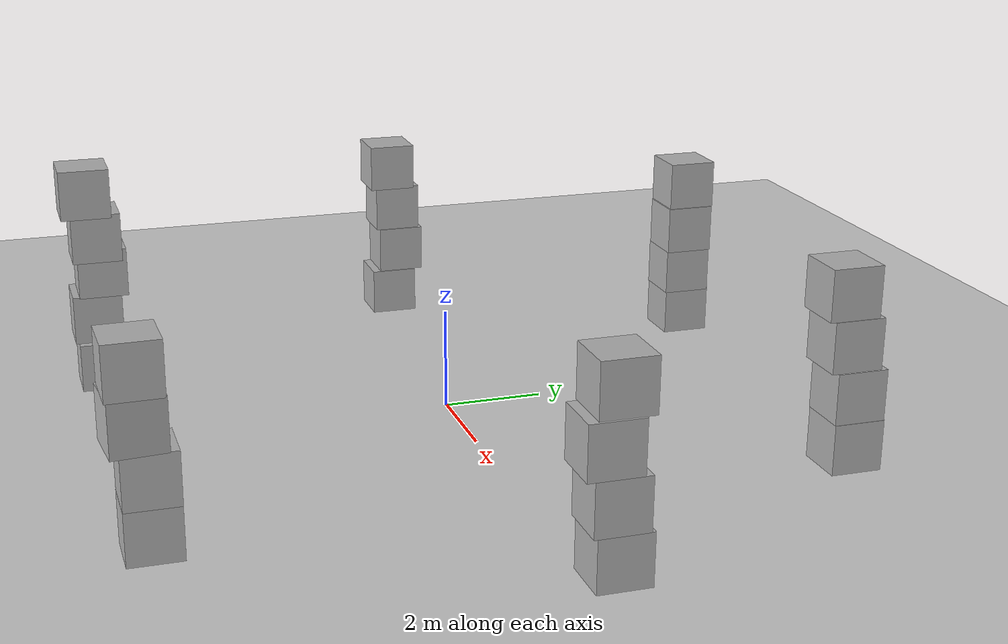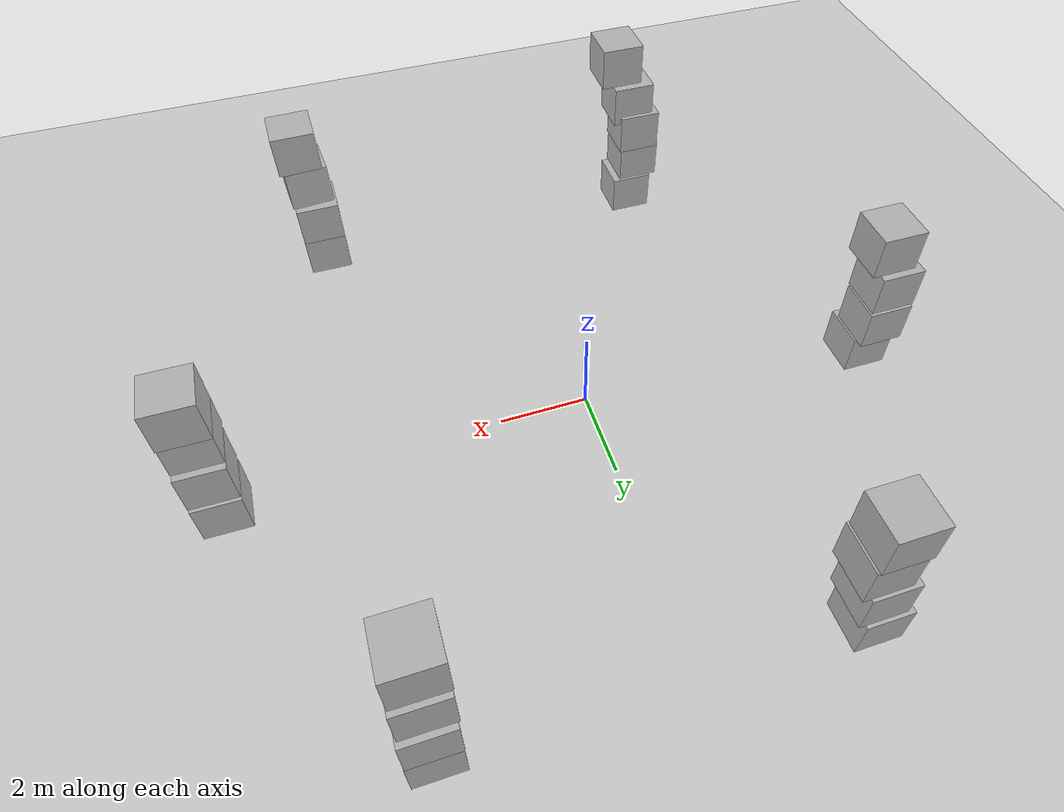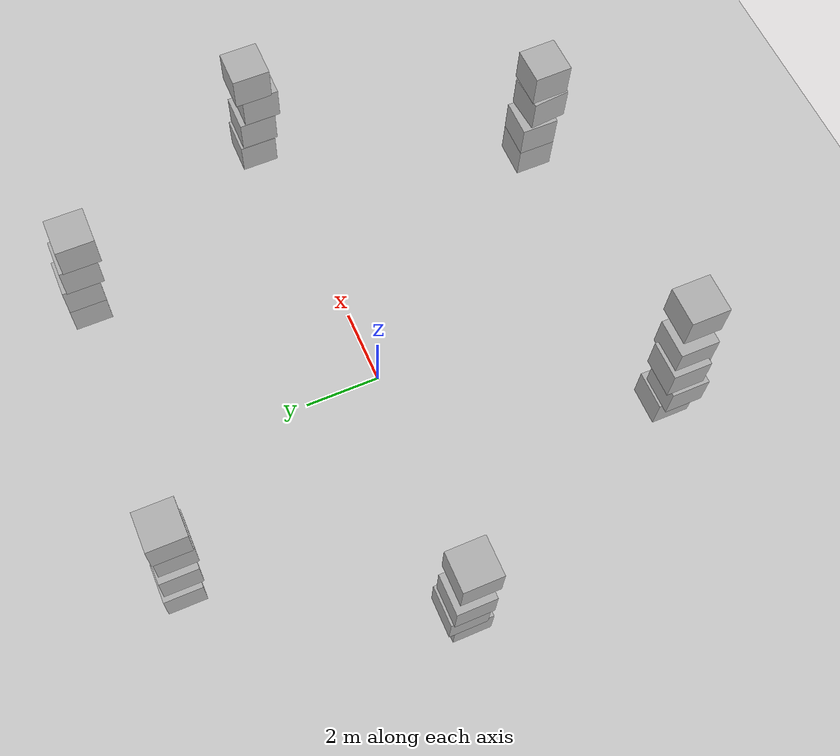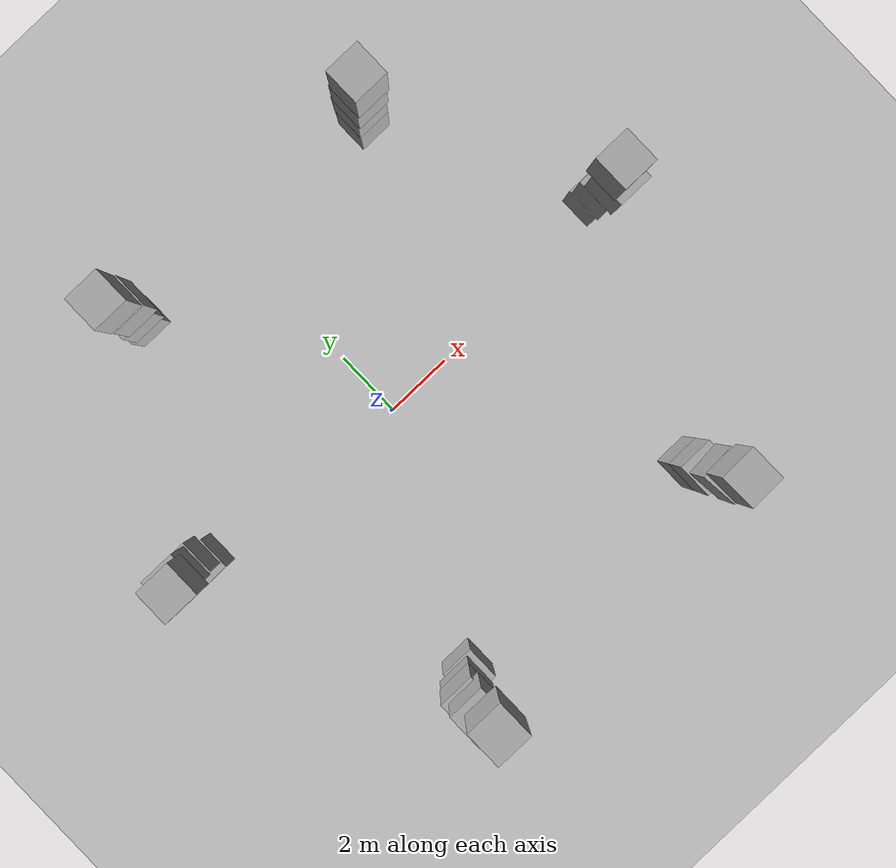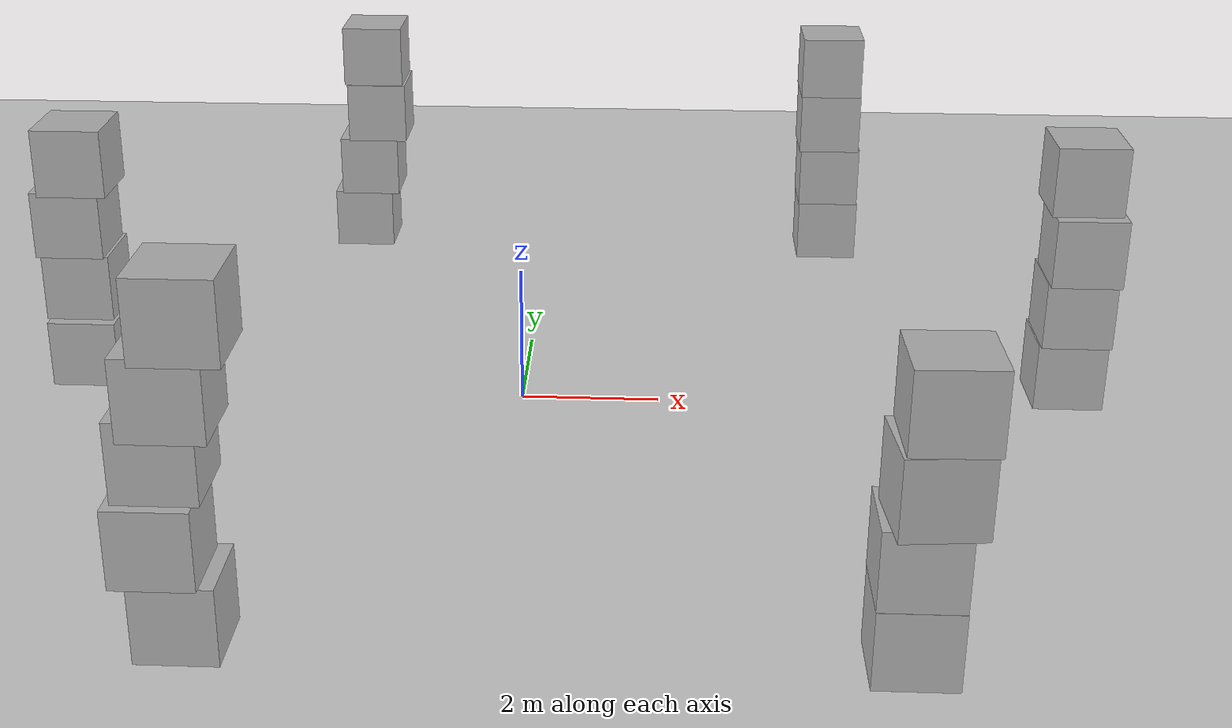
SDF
<sdf version='1.10'>
  <world name='test_world'>
    <physics name='1ms' type='ode'>
      <max_step_size>0.001</max_step_size>
      <real_time_factor>1</real_time_factor>
      <real_time_update_rate>1000</real_time_update_rate>
    </physics>
    <plugin name='gz::sim::systems::Physics' filename='gz-sim-physics-system'/>
    <plugin name='gz::sim::systems::UserCommands' filename='gz-sim-user-commands-system'/>
    <plugin name='gz::sim::systems::SceneBroadcaster' filename='gz-sim-scene-broadcaster-system'/>
    <plugin name='gz::sim::systems::Contact' filename='gz-sim-contact-system'/>
    <gravity>0 0 -9.8000000000000007</gravity>
    <magnetic_field>5.5644999999999998e-06 2.2875799999999999e-05 -4.2388400000000002e-05</magnetic_field>
    <atmosphere type='adiabatic'/>
    <scene>
      <ambient>0.400000006 0.400000006 0.400000006 1</ambient>
      <background>0.699999988 0.699999988 0.699999988 1</background>
      <shadows>true</shadows>
    </scene>
    <model name='ground_plane'>
      <static>true</static>
      <link name='link'>
        <collision name='collision'>
          <geometry>
            <plane>
              <normal>0 0 1</normal>
              <size>100 100</size>
            </plane>
          </geometry>
          <surface>
            <friction>
              <ode/>
            </friction>
            <bounce/>
            <contact/>
          </surface>
        </collision>
        <visual name='visual'>
          <geometry>
            <plane>
              <normal>0 0 1</normal>
              <size>100 100</size>
            </plane>
          </geometry>
          <material>
            <ambient>0.800000012 0.800000012 0.800000012 1</ambient>
            <diffuse>0.800000012 0.800000012 0.800000012 1</diffuse>
            <specular>0.800000012 0.800000012 0.800000012 1</specular>
          </material>
        </visual>
        <pose>0 0 0 0 0 0</pose>
        <inertial>
          <pose>0 0 0 0 0 0</pose>
          <mass>1</mass>
          <inertia>
            <ixx>1</ixx>
            <ixy>0</ixy>
            <ixz>0</ixz>
            <iyy>1</iyy>
            <iyz>0</iyz>
            <izz>1</izz>
          </inertia>
        </inertial>
        <enable_wind>false</enable_wind>
      </link>
      <pose>0 0 0 0 0 0</pose>
      <self_collide>false</self_collide>
    </model>

    <model name='box'>
      <pose>-3.29413 6.5723200000000004 0.5 6.2287699999999997e-22 9.3279700000000006e-22 -3.63155e-22</pose>
      <link name='box_link'>
        <inertial>
          <inertia>
            <ixx>0.16666</ixx>
            <ixy>0</ixy>
            <ixz>0</ixz>
            <iyy>0.16666</iyy>
            <iyz>0</iyz>
            <izz>0.16666</izz>
          </inertia>
          <mass>1</mass>
          <pose>0 0 0 0 0 0</pose>
        </inertial>
        <collision name='box_collision'>
          <geometry>
            <box>
              <size>1 1 1</size>
            </box>
          </geometry>
          <surface>
            <friction>
              <ode/>
            </friction>
            <bounce/>
            <contact/>
          </surface>
        </collision>
        <visual name='box_visual'>
          <geometry>
            <box>
              <size>1 1 1</size>
            </box>
          </geometry>
          <material>
            <ambient>0.300000012 0.300000012 0.300000012 1</ambient>
            <diffuse>0.699999988 0.699999988 0.699999988 1</diffuse>
            <specular>1 1 1 1</specular>
          </material>
        </visual>
        <pose>0 0 0 0 0 0</pose>
        <enable_wind>false</enable_wind>
      </link>
      <static>false</static>
      <self_collide>false</self_collide>
    </model>
    <model name='box_0'>
      <pose>4.9329900000000002 6.3403200000000002 0.5 6.2287699999999997e-22 9.3279700000000006e-22 -3.63155e-22</pose>
      <link name='box_link'>
        <inertial>
          <inertia>
            <ixx>0.16666</ixx>
            <ixy>0</ixy>
            <ixz>0</ixz>
            <iyy>0.16666</iyy>
            <iyz>0</iyz>
            <izz>0.16666</izz>
          </inertia>
          <mass>1</mass>
          <pose>0 0 0 0 0 0</pose>
        </inertial>
        <collision name='box_collision'>
          <geometry>
            <box>
              <size>1 1 1</size>
            </box>
          </geometry>
          <surface>
            <friction>
              <ode/>
            </friction>
            <bounce/>
            <contact/>
          </surface>
        </collision>
        <visual name='box_visual'>
          <geometry>
            <box>
              <size>1 1 1</size>
            </box>
          </geometry>
          <material>
            <ambient>0.300000012 0.300000012 0.300000012 1</ambient>
            <diffuse>0.699999988 0.699999988 0.699999988 1</diffuse>
            <specular>1 1 1 1</specular>
          </material>
        </visual>
        <pose>0 0 0 0 0 0</pose>
        <enable_wind>false</enable_wind>
      </link>
      <static>false</static>
      <self_collide>false</self_collide>
    </model>
    <model name='box_1'>
      <pose>7.97173 0.46510899999999999 0.5 0 0 0</pose>
      <link name='box_link'>
        <inertial>
          <inertia>
            <ixx>0.16666</ixx>
            <ixy>0</ixy>
            <ixz>0</ixz>
            <iyy>0.16666</iyy>
            <iyz>0</iyz>
            <izz>0.16666</izz>
          </inertia>
          <mass>1</mass>
          <pose>0 0 0 0 0 0</pose>
        </inertial>
        <collision name='box_collision'>
          <geometry>
            <box>
              <size>1 1 1</size>
            </box>
          </geometry>
          <surface>
            <friction>
              <ode/>
            </friction>
            <bounce/>
            <contact/>
          </surface>
        </collision>
        <visual name='box_visual'>
          <geometry>
            <box>
              <size>1 1 1</size>
            </box>
          </geometry>
          <material>
            <ambient>0.300000012 0.300000012 0.300000012 1</ambient>
            <diffuse>0.699999988 0.699999988 0.699999988 1</diffuse>
            <specular>1 1 1 1</specular>
          </material>
        </visual>
        <pose>0 0 0 0 0 0</pose>
        <enable_wind>false</enable_wind>
      </link>
      <static>false</static>
      <self_collide>false</self_collide>
    </model>
    <model name='box_2'>
      <pose>-6.56745 0.53924499999999997 0.5 0 0 0</pose>
      <link name='box_link'>
        <inertial>
          <inertia>
            <ixx>0.16666</ixx>
            <ixy>0</ixy>
            <ixz>0</ixz>
            <iyy>0.16666</iyy>
            <iyz>0</iyz>
            <izz>0.16666</izz>
          </inertia>
          <mass>1</mass>
          <pose>0 0 0 0 0 0</pose>
        </inertial>
        <collision name='box_collision'>
          <geometry>
            <box>
              <size>1 1 1</size>
            </box>
          </geometry>
          <surface>
            <friction>
              <ode/>
            </friction>
            <bounce/>
            <contact/>
          </surface>
        </collision>
        <visual name='box_visual'>
          <geometry>
            <box>
              <size>1 1 1</size>
            </box>
          </geometry>
          <material>
            <ambient>0.300000012 0.300000012 0.300000012 1</ambient>
            <diffuse>0.699999988 0.699999988 0.699999988 1</diffuse>
            <specular>1 1 1 1</specular>
          </material>
        </visual>
        <pose>0 0 0 0 0 0</pose>
        <enable_wind>false</enable_wind>
      </link>
      <static>false</static>
      <self_collide>false</self_collide>
    </model>
    <model name='box_3'>
      <pose>-3.3765000000000001 -6.5466100000000003 0.5 0 0 0</pose>
      <link name='box_link'>
        <inertial>
          <inertia>
            <ixx>0.16666</ixx>
            <ixy>0</ixy>
            <ixz>0</ixz>
            <iyy>0.16666</iyy>
            <iyz>0</iyz>
            <izz>0.16666</izz>
          </inertia>
          <mass>1</mass>
          <pose>0 0 0 0 0 0</pose>
        </inertial>
        <collision name='box_collision'>
          <geometry>
            <box>
              <size>1 1 1</size>
            </box>
          </geometry>
          <surface>
            <friction>
              <ode/>
            </friction>
            <bounce/>
            <contact/>
          </surface>
        </collision>
        <visual name='box_visual'>
          <geometry>
            <box>
              <size>1 1 1</size>
            </box>
          </geometry>
          <material>
            <ambient>0.300000012 0.300000012 0.300000012 1</ambient>
            <diffuse>0.699999988 0.699999988 0.699999988 1</diffuse>
            <specular>1 1 1 1</specular>
          </material>
        </visual>
        <pose>0 0 0 0 0 0</pose>
        <enable_wind>false</enable_wind>
      </link>
      <static>false</static>
      <self_collide>false</self_collide>
    </model>
    <model name='box_4'>
      <pose>4.8706500000000004 -6.6208999999999998 0.50000199999999995 -4.0443500000000011e-07 -1.0241600000000004e-05 -0.00023433800000000001</pose>
      <link name='box_link'>
        <inertial>
          <inertia>
            <ixx>0.16666</ixx>
            <ixy>0</ixy>
            <ixz>0</ixz>
            <iyy>0.16666</iyy>
            <iyz>0</iyz>
            <izz>0.16666</izz>
          </inertia>
          <mass>1</mass>
          <pose>0 0 0 0 0 0</pose>
        </inertial>
        <collision name='box_collision'>
          <geometry>
            <box>
              <size>1 1 1</size>
            </box>
          </geometry>
          <surface>
            <friction>
              <ode/>
            </friction>
            <bounce/>
            <contact/>
          </surface>
        </collision>
        <visual name='box_visual'>
          <geometry>
            <box>
              <size>1 1 1</size>
            </box>
          </geometry>
          <material>
            <ambient>0.300000012 0.300000012 0.300000012 1</ambient>
            <diffuse>0.699999988 0.699999988 0.699999988 1</diffuse>
            <specular>1 1 1 1</specular>
          </material>
        </visual>
        <pose>0 0 0 0 0 0</pose>
        <enable_wind>false</enable_wind>
      </link>
      <static>false</static>
      <self_collide>false</self_collide>
    </model>
    <model name='box_5'>
      <pose>4.9195700000000002 6.3357000000000001 1.4999899999999999 5.1937699999999989e-08 -1.9126299999999998e-08 -1.7903800000000001e-15</pose>
      <link name='box_link'>
        <inertial>
          <inertia>
            <ixx>0.16666</ixx>
            <ixy>0</ixy>
            <ixz>0</ixz>
            <iyy>0.16666</iyy>
            <iyz>0</iyz>
            <izz>0.16666</izz>
          </inertia>
          <mass>1</mass>
          <pose>0 0 0 0 0 0</pose>
        </inertial>
        <collision name='box_collision'>
          <geometry>
            <box>
              <size>1 1 1</size>
            </box>
          </geometry>
          <surface>
            <friction>
              <ode/>
            </friction>
            <bounce/>
            <contact/>
          </surface>
        </collision>
        <visual name='box_visual'>
          <geometry>
            <box>
              <size>1 1 1</size>
            </box>
          </geometry>
          <material>
            <ambient>0.300000012 0.300000012 0.300000012 1</ambient>
            <diffuse>0.699999988 0.699999988 0.699999988 1</diffuse>
            <specular>1 1 1 1</specular>
          </material>
        </visual>
        <pose>0 0 0 0 0 0</pose>
        <enable_wind>false</enable_wind>
      </link>
      <static>false</static>
      <self_collide>false</self_collide>
    </model>
    <model name='box_6'>
      <pose>4.8823499999999997 6.2183900000000003 2.4999899999999999 1.1252100000000003e-07 -3.0415800000000002e-08 1.4821600000000004e-15</pose>
      <link name='box_link'>
        <inertial>
          <inertia>
            <ixx>0.16666</ixx>
            <ixy>0</ixy>
            <ixz>0</ixz>
            <iyy>0.16666</iyy>
            <iyz>0</iyz>
            <izz>0.16666</izz>
          </inertia>
          <mass>1</mass>
          <pose>0 0 0 0 0 0</pose>
        </inertial>
        <collision name='box_collision'>
          <geometry>
            <box>
              <size>1 1 1</size>
            </box>
          </geometry>
          <surface>
            <friction>
              <ode/>
            </friction>
            <bounce/>
            <contact/>
          </surface>
        </collision>
        <visual name='box_visual'>
          <geometry>
            <box>
              <size>1 1 1</size>
            </box>
          </geometry>
          <material>
            <ambient>0.300000012 0.300000012 0.300000012 1</ambient>
            <diffuse>0.699999988 0.699999988 0.699999988 1</diffuse>
            <specular>1 1 1 1</specular>
          </material>
        </visual>
        <pose>0 0 0 0 0 0</pose>
        <enable_wind>false</enable_wind>
      </link>
      <static>false</static>
      <self_collide>false</self_collide>
    </model>
    <model name='box_7'>
      <pose>-3.1568999999999998 6.5003200000000003 1.4999800000000001 9.6936399999999997e-08 2.6009400000000011e-07 -2.2097200000000001e-13</pose>
      <link name='box_link'>
        <inertial>
          <inertia>
            <ixx>0.16666</ixx>
            <ixy>0</ixy>
            <ixz>0</ixz>
            <iyy>0.16666</iyy>
            <iyz>0</iyz>
            <izz>0.16666</izz>
          </inertia>
          <mass>1</mass>
          <pose>0 0 0 0 0 0</pose>
        </inertial>
        <collision name='box_collision'>
          <geometry>
            <box>
              <size>1 1 1</size>
            </box>
          </geometry>
          <surface>
            <friction>
              <ode/>
            </friction>
            <bounce/>
            <contact/>
          </surface>
        </collision>
        <visual name='box_visual'>
          <geometry>
            <box>
              <size>1 1 1</size>
            </box>
          </geometry>
          <material>
            <ambient>0.300000012 0.300000012 0.300000012 1</ambient>
            <diffuse>0.699999988 0.699999988 0.699999988 1</diffuse>
            <specular>1 1 1 1</specular>
          </material>
        </visual>
        <pose>0 0 0 0 0 0</pose>
        <enable_wind>false</enable_wind>
      </link>
      <static>false</static>
      <self_collide>false</self_collide>
    </model>
    <model name='box_8'>
      <pose>-2.9853000000000001 6.4356299999999997 2.4999799999999999 9.9606299999999975e-08 2.7267700000000021e-07 -2.2732000000000004e-13</pose>
      <link name='box_link'>
        <inertial>
          <inertia>
            <ixx>0.16666</ixx>
            <ixy>0</ixy>
            <ixz>0</ixz>
            <iyy>0.16666</iyy>
            <iyz>0</iyz>
            <izz>0.16666</izz>
          </inertia>
          <mass>1</mass>
          <pose>0 0 0 0 0 0</pose>
        </inertial>
        <collision name='box_collision'>
          <geometry>
            <box>
              <size>1 1 1</size>
            </box>
          </geometry>
          <surface>
            <friction>
              <ode/>
            </friction>
            <bounce/>
            <contact/>
          </surface>
        </collision>
        <visual name='box_visual'>
          <geometry>
            <box>
              <size>1 1 1</size>
            </box>
          </geometry>
          <material>
            <ambient>0.300000012 0.300000012 0.300000012 1</ambient>
            <diffuse>0.699999988 0.699999988 0.699999988 1</diffuse>
            <specular>1 1 1 1</specular>
          </material>
        </visual>
        <pose>0 0 0 0 0 0</pose>
        <enable_wind>false</enable_wind>
      </link>
      <static>false</static>
      <self_collide>false</self_collide>
    </model>
    <model name='box_9'>
      <pose>7.99831 0.239622 2.5 2.8067400000000001e-08 5.7664600000000025e-08 -2.3598400000000003e-14</pose>
      <link name='box_link'>
        <inertial>
          <inertia>
            <ixx>0.16666</ixx>
            <ixy>0</ixy>
            <ixz>0</ixz>
            <iyy>0.16666</iyy>
            <iyz>0</iyz>
            <izz>0.16666</izz>
          </inertia>
          <mass>1</mass>
          <pose>0 0 0 0 0 0</pose>
        </inertial>
        <collision name='box_collision'>
          <geometry>
            <box>
              <size>1 1 1</size>
            </box>
          </geometry>
          <surface>
            <friction>
              <ode/>
            </friction>
            <bounce/>
            <contact/>
          </surface>
        </collision>
        <visual name='box_visual'>
          <geometry>
            <box>
              <size>1 1 1</size>
            </box>
          </geometry>
          <material>
            <ambient>0.300000012 0.300000012 0.300000012 1</ambient>
            <diffuse>0.699999988 0.699999988 0.699999988 1</diffuse>
            <specular>1 1 1 1</specular>
          </material>
        </visual>
        <pose>0 0 0 0 0 0</pose>
        <enable_wind>false</enable_wind>
      </link>
      <static>false</static>
      <self_collide>false</self_collide>
    </model>
    <model name='box_10'>
      <pose>7.99031 0.388957 1.4999400000000001 1.0452799999999997e-07 1.1515600000000004e-08 6.5451000000000016e-16</pose>
      <link name='box_link'>
        <inertial>
          <inertia>
            <ixx>0.16666</ixx>
            <ixy>0</ixy>
            <ixz>0</ixz>
            <iyy>0.16666</iyy>
            <iyz>0</iyz>
            <izz>0.16666</izz>
          </inertia>
          <mass>1</mass>
          <pose>0 0 0 0 0 0</pose>
        </inertial>
        <collision name='box_collision'>
          <geometry>
            <box>
              <size>1 1 1</size>
            </box>
          </geometry>
          <surface>
            <friction>
              <ode/>
            </friction>
            <bounce/>
            <contact/>
          </surface>
        </collision>
        <visual name='box_visual'>
          <geometry>
            <box>
              <size>1 1 1</size>
            </box>
          </geometry>
          <material>
            <ambient>0.300000012 0.300000012 0.300000012 1</ambient>
            <diffuse>0.699999988 0.699999988 0.699999988 1</diffuse>
            <specular>1 1 1 1</specular>
          </material>
        </visual>
        <pose>0 0 0 0 0 0</pose>
        <enable_wind>false</enable_wind>
      </link>
      <static>false</static>
      <self_collide>false</self_collide>
    </model>
    <model name='box_11'>
      <pose>4.9549899999999996 -6.8223000000000003 2.5 3.4348700000000025e-07 -8.1681299999999993e-06 0.090193899999999966</pose>
      <link name='box_link'>
        <inertial>
          <inertia>
            <ixx>0.16666</ixx>
            <ixy>0</ixy>
            <ixz>0</ixz>
            <iyy>0.16666</iyy>
            <iyz>0</iyz>
            <izz>0.16666</izz>
          </inertia>
          <mass>1</mass>
          <pose>0 0 0 0 0 0</pose>
        </inertial>
        <collision name='box_collision'>
          <geometry>
            <box>
              <size>1 1 1</size>
            </box>
          </geometry>
          <surface>
            <friction>
              <ode/>
            </friction>
            <bounce/>
            <contact/>
          </surface>
        </collision>
        <visual name='box_visual'>
          <geometry>
            <box>
              <size>1 1 1</size>
            </box>
          </geometry>
          <material>
            <ambient>0.300000012 0.300000012 0.300000012 1</ambient>
            <diffuse>0.699999988 0.699999988 0.699999988 1</diffuse>
            <specular>1 1 1 1</specular>
          </material>
        </visual>
        <pose>0 0 0 0 0 0</pose>
        <enable_wind>false</enable_wind>
      </link>
      <static>false</static>
      <self_collide>false</self_collide>
    </model>
    <model name='box_12'>
      <pose>4.8671100000000003 -6.6172399999999998 1.5 -7.042160000000002e-07 -1.02546e-05 -0.000149192</pose>
      <link name='box_link'>
        <inertial>
          <inertia>
            <ixx>0.16666</ixx>
            <ixy>0</ixy>
            <ixz>0</ixz>
            <iyy>0.16666</iyy>
            <iyz>0</iyz>
            <izz>0.16666</izz>
          </inertia>
          <mass>1</mass>
          <pose>0 0 0 0 0 0</pose>
        </inertial>
        <collision name='box_collision'>
          <geometry>
            <box>
              <size>1 1 1</size>
            </box>
          </geometry>
          <surface>
            <friction>
              <ode/>
            </friction>
            <bounce/>
            <contact/>
          </surface>
        </collision>
        <visual name='box_visual'>
          <geometry>
            <box>
              <size>1 1 1</size>
            </box>
          </geometry>
          <material>
            <ambient>0.300000012 0.300000012 0.300000012 1</ambient>
            <diffuse>0.699999988 0.699999988 0.699999988 1</diffuse>
            <specular>1 1 1 1</specular>
          </material>
        </visual>
        <pose>0 0 0 0 0 0</pose>
        <enable_wind>false</enable_wind>
      </link>
      <static>false</static>
      <self_collide>false</self_collide>
    </model>
    <model name='box_13'>
      <pose>-3.4689899999999998 -6.47471 2.5 3.4189899999999998e-08 6.6020099999999997e-07 -4.7629899999999978e-10</pose>
      <link name='box_link'>
        <inertial>
          <inertia>
            <ixx>0.16666</ixx>
            <ixy>0</ixy>
            <ixz>0</ixz>
            <iyy>0.16666</iyy>
            <iyz>0</iyz>
            <izz>0.16666</izz>
          </inertia>
          <mass>1</mass>
          <pose>0 0 0 0 0 0</pose>
        </inertial>
        <collision name='box_collision'>
          <geometry>
            <box>
              <size>1 1 1</size>
            </box>
          </geometry>
          <surface>
            <friction>
              <ode/>
            </friction>
            <bounce/>
            <contact/>
          </surface>
        </collision>
        <visual name='box_visual'>
          <geometry>
            <box>
              <size>1 1 1</size>
            </box>
          </geometry>
          <material>
            <ambient>0.300000012 0.300000012 0.300000012 1</ambient>
            <diffuse>0.699999988 0.699999988 0.699999988 1</diffuse>
            <specular>1 1 1 1</specular>
          </material>
        </visual>
        <pose>0 0 0 0 0 0</pose>
        <enable_wind>false</enable_wind>
      </link>
      <static>false</static>
      <self_collide>false</self_collide>
    </model>
    <model name='box_14'>
      <pose>-3.5541900000000002 -6.6115300000000001 1.4999899999999999 -1.14892e-08 -2.92506e-08 2.5193799999999999e-15</pose>
      <link name='box_link'>
        <inertial>
          <inertia>
            <ixx>0.16666</ixx>
            <ixy>0</ixy>
            <ixz>0</ixz>
            <iyy>0.16666</iyy>
            <iyz>0</iyz>
            <izz>0.16666</izz>
          </inertia>
          <mass>1</mass>
          <pose>0 0 0 0 0 0</pose>
        </inertial>
        <collision name='box_collision'>
          <geometry>
            <box>
              <size>1 1 1</size>
            </box>
          </geometry>
          <surface>
            <friction>
              <ode/>
            </friction>
            <bounce/>
            <contact/>
          </surface>
        </collision>
        <visual name='box_visual'>
          <geometry>
            <box>
              <size>1 1 1</size>
            </box>
          </geometry>
          <material>
            <ambient>0.300000012 0.300000012 0.300000012 1</ambient>
            <diffuse>0.699999988 0.699999988 0.699999988 1</diffuse>
            <specular>1 1 1 1</specular>
          </material>
        </visual>
        <pose>0 0 0 0 0 0</pose>
        <enable_wind>false</enable_wind>
      </link>
      <static>false</static>
      <self_collide>false</self_collide>
    </model>
    <model name='box_15'>
      <pose>-6.6593999999999998 0.65529000000000004 2.4999899999999999 2.1068099999999999e-08 9.7674400000000037e-09 -5.8084899999999998e-15</pose>
      <link name='box_link'>
        <inertial>
          <inertia>
            <ixx>0.16666</ixx>
            <ixy>0</ixy>
            <ixz>0</ixz>
            <iyy>0.16666</iyy>
            <iyz>0</iyz>
            <izz>0.16666</izz>
          </inertia>
          <mass>1</mass>
          <pose>0 0 0 0 0 0</pose>
        </inertial>
        <collision name='box_collision'>
          <geometry>
            <box>
              <size>1 1 1</size>
            </box>
          </geometry>
          <surface>
            <friction>
              <ode/>
            </friction>
            <bounce/>
            <contact/>
          </surface>
        </collision>
        <visual name='box_visual'>
          <geometry>
            <box>
              <size>1 1 1</size>
            </box>
          </geometry>
          <material>
            <ambient>0.300000012 0.300000012 0.300000012 1</ambient>
            <diffuse>0.699999988 0.699999988 0.699999988 1</diffuse>
            <specular>1 1 1 1</specular>
          </material>
        </visual>
        <pose>0 0 0 0 0 0</pose>
        <enable_wind>false</enable_wind>
      </link>
      <static>false</static>
      <self_collide>false</self_collide>
    </model>
    <model name='box_16'>
      <pose>-6.6150900000000004 0.71882699999999999 1.5 -2.4027000000000001e-08 -1.2786500000000003e-08 -1.3900499999999994e-15</pose>
      <link name='box_link'>
        <inertial>
          <inertia>
            <ixx>0.16666</ixx>
            <ixy>0</ixy>
            <ixz>0</ixz>
            <iyy>0.16666</iyy>
            <iyz>0</iyz>
            <izz>0.16666</izz>
          </inertia>
          <mass>1</mass>
          <pose>0 0 0 0 0 0</pose>
        </inertial>
        <collision name='box_collision'>
          <geometry>
            <box>
              <size>1 1 1</size>
            </box>
          </geometry>
          <surface>
            <friction>
              <ode/>
            </friction>
            <bounce/>
            <contact/>
          </surface>
        </collision>
        <visual name='box_visual'>
          <geometry>
            <box>
              <size>1 1 1</size>
            </box>
          </geometry>
          <material>
            <ambient>0.300000012 0.300000012 0.300000012 1</ambient>
            <diffuse>0.699999988 0.699999988 0.699999988 1</diffuse>
            <specular>1 1 1 1</specular>
          </material>
        </visual>
        <pose>0 0 0 0 0 0</pose>
        <enable_wind>false</enable_wind>
      </link>
      <static>false</static>
      <self_collide>false</self_collide>
    </model>
    <model name='box_17'>
      <pose>4.8605400000000003 6.11233 3.4999899999999999 1.1726899999999998e-07 -3.1231400000000025e-08 6.1481899999999998e-16</pose>
      <link name='box_link'>
        <inertial>
          <inertia>
            <ixx>0.16666</ixx>
            <ixy>0</ixy>
            <ixz>0</ixz>
            <iyy>0.16666</iyy>
            <iyz>0</iyz>
            <izz>0.16666</izz>
          </inertia>
          <mass>1</mass>
          <pose>0 0 0 0 0 0</pose>
        </inertial>
        <collision name='box_collision'>
          <geometry>
            <box>
              <size>1 1 1</size>
            </box>
          </geometry>
          <surface>
            <friction>
              <ode/>
            </friction>
            <bounce/>
            <contact/>
          </surface>
        </collision>
        <visual name='box_visual'>
          <geometry>
            <box>
              <size>1 1 1</size>
            </box>
          </geometry>
          <material>
            <ambient>0.300000012 0.300000012 0.300000012 1</ambient>
            <diffuse>0.699999988 0.699999988 0.699999988 1</diffuse>
            <specular>1 1 1 1</specular>
          </material>
        </visual>
        <pose>0 0 0 0 0 0</pose>
        <enable_wind>false</enable_wind>
      </link>
      <static>false</static>
      <self_collide>false</self_collide>
    </model>
    <model name='box_18'>
      <pose>-3.02698 6.4651800000000001 3.4999899999999999 8.5854099999999971e-09 3.1089899999999997e-08 -2.4186399999999988e-13</pose>
      <link name='box_link'>
        <inertial>
          <inertia>
            <ixx>0.16666</ixx>
            <ixy>0</ixy>
            <ixz>0</ixz>
            <iyy>0.16666</iyy>
            <iyz>0</iyz>
            <izz>0.16666</izz>
          </inertia>
          <mass>1</mass>
          <pose>0 0 0 0 0 0</pose>
        </inertial>
        <collision name='box_collision'>
          <geometry>
            <box>
              <size>1 1 1</size>
            </box>
          </geometry>
          <surface>
            <friction>
              <ode/>
            </friction>
            <bounce/>
            <contact/>
          </surface>
        </collision>
        <visual name='box_visual'>
          <geometry>
            <box>
              <size>1 1 1</size>
            </box>
          </geometry>
          <material>
            <ambient>0.300000012 0.300000012 0.300000012 1</ambient>
            <diffuse>0.699999988 0.699999988 0.699999988 1</diffuse>
            <specular>1 1 1 1</specular>
          </material>
        </visual>
        <pose>0 0 0 0 0 0</pose>
        <enable_wind>false</enable_wind>
      </link>
      <static>false</static>
      <self_collide>false</self_collide>
    </model>
    <model name='box_19'>
      <pose>-6.4881099999999998 0.497529 3.4999899999999999 1.6852699999999992e-08 2.1788600000000006e-08 -1.4248700000000002e-16</pose>
      <link name='box_link'>
        <inertial>
          <inertia>
            <ixx>0.16666</ixx>
            <ixy>0</ixy>
            <ixz>0</ixz>
            <iyy>0.16666</iyy>
            <iyz>0</iyz>
            <izz>0.16666</izz>
          </inertia>
          <mass>1</mass>
          <pose>0 0 0 0 0 0</pose>
        </inertial>
        <collision name='box_collision'>
          <geometry>
            <box>
              <size>1 1 1</size>
            </box>
          </geometry>
          <surface>
            <friction>
              <ode/>
            </friction>
            <bounce/>
            <contact/>
          </surface>
        </collision>
        <visual name='box_visual'>
          <geometry>
            <box>
              <size>1 1 1</size>
            </box>
          </geometry>
          <material>
            <ambient>0.300000012 0.300000012 0.300000012 1</ambient>
            <diffuse>0.699999988 0.699999988 0.699999988 1</diffuse>
            <specular>1 1 1 1</specular>
          </material>
        </visual>
        <pose>0 0 0 0 0 0</pose>
        <enable_wind>false</enable_wind>
      </link>
      <static>false</static>
      <self_collide>false</self_collide>
    </model>
    <model name='box_20'>
      <pose>-3.3050285414173231 -6.5694204567382863 3.2972852772267536 1.458516420336787e-06 2.3877062369667591e-06 -4.2036361168256848e-10</pose>
      <link name='box_link'>
        <inertial>
          <inertia>
            <ixx>0.16666</ixx>
            <ixy>0</ixy>
            <ixz>0</ixz>
            <iyy>0.16666</iyy>
            <iyz>0</iyz>
            <izz>0.16666</izz>
          </inertia>
          <mass>1</mass>
          <pose>0 0 0 0 0 0</pose>
        </inertial>
        <collision name='box_collision'>
          <geometry>
            <box>
              <size>1 1 1</size>
            </box>
          </geometry>
          <surface>
            <friction>
              <ode/>
            </friction>
            <bounce/>
            <contact/>
          </surface>
        </collision>
        <visual name='box_visual'>
          <geometry>
            <box>
              <size>1 1 1</size>
            </box>
          </geometry>
          <material>
            <ambient>0.300000012 0.300000012 0.300000012 1</ambient>
            <diffuse>0.699999988 0.699999988 0.699999988 1</diffuse>
            <specular>1 1 1 1</specular>
          </material>
        </visual>
        <pose>0 0 0 0 0 0</pose>
        <enable_wind>false</enable_wind>
      </link>
      <static>false</static>
      <self_collide>false</self_collide>
    </model>
    <model name='box_21'>
      <pose>7.9481128389601441 0.42901098767419826 3.4999993973266417 1.8935073816034106e-08 -1.0429504145059394e-09 -7.0073034348357525e-14</pose>
      <link name='box_link'>
        <inertial>
          <inertia>
            <ixx>0.16666</ixx>
            <ixy>0</ixy>
            <ixz>0</ixz>
            <iyy>0.16666</iyy>
            <iyz>0</iyz>
            <izz>0.16666</izz>
          </inertia>
          <mass>1</mass>
          <pose>0 0 0 0 0 0</pose>
        </inertial>
        <collision name='box_collision'>
          <geometry>
            <box>
              <size>1 1 1</size>
            </box>
          </geometry>
          <surface>
            <friction>
              <ode/>
            </friction>
            <bounce/>
            <contact/>
          </surface>
        </collision>
        <visual name='box_visual'>
          <geometry>
            <box>
              <size>1 1 1</size>
            </box>
          </geometry>
          <material>
            <ambient>0.300000012 0.300000012 0.300000012 1</ambient>
            <diffuse>0.699999988 0.699999988 0.699999988 1</diffuse>
            <specular>1 1 1 1</specular>
          </material>
        </visual>
        <pose>0 0 0 0 0 0</pose>
        <enable_wind>false</enable_wind>
      </link>
      <static>false</static>
      <self_collide>false</self_collide>
    </model>
    <model name='box_22'>
      <pose>5.0219190514659635 -6.8214294196848675 3.4999997253500146 2.6554928691609132 -1.5707960351734234 -2.6346129197313615</pose>
      <link name='box_link'>
        <inertial>
          <inertia>
            <ixx>0.16666</ixx>
            <ixy>0</ixy>
            <ixz>0</ixz>
            <iyy>0.16666</iyy>
            <iyz>0</iyz>
            <izz>0.16666</izz>
          </inertia>
          <mass>1</mass>
          <pose>0 0 0 0 0 0</pose>
        </inertial>
        <collision name='box_collision'>
          <geometry>
            <box>
              <size>1 1 1</size>
            </box>
          </geometry>
          <surface>
            <friction>
              <ode/>
            </friction>
            <bounce/>
            <contact/>
          </surface>
        </collision>
        <visual name='box_visual'>
          <geometry>
            <box>
              <size>1 1 1</size>
            </box>
          </geometry>
          <material>
            <ambient>0.300000012 0.300000012 0.300000012 1</ambient>
            <diffuse>0.699999988 0.699999988 0.699999988 1</diffuse>
            <specular>1 1 1 1</specular>
          </material>
        </visual>
        <pose>0 0 0 0 0 0</pose>
        <enable_wind>false</enable_wind>
      </link>
      <static>false</static>
      <self_collide>false</self_collide>
    </model>
    <model name='box_23'>
      <pose>-3.0302236567537513 -6.7633520735366393 4.2972843209561349 1.467096259721135e-06 2.4027268523444738e-06 -4.638367230293304e-10</pose>
      <link name='box_link'>
        <inertial>
          <inertia>
            <ixx>0.16666</ixx>
            <ixy>0</ixy>
            <ixz>0</ixz>
            <iyy>0.16666</iyy>
            <iyz>0</iyz>
            <izz>0.16666</izz>
          </inertia>
          <mass>1</mass>
          <pose>0 0 0 0 0 0</pose>
        </inertial>
        <collision name='box_collision'>
          <geometry>
            <box>
              <size>1 1 1</size>
            </box>
          </geometry>
          <surface>
            <friction>
              <ode/>
            </friction>
            <bounce/>
            <contact/>
          </surface>
        </collision>
        <visual name='box_visual'>
          <geometry>
            <box>
              <size>1 1 1</size>
            </box>
          </geometry>
          <material>
            <ambient>0.300000012 0.300000012 0.300000012 1</ambient>
            <diffuse>0.699999988 0.699999988 0.699999988 1</diffuse>
            <specular>1 1 1 1</specular>
          </material>
        </visual>
        <pose>0 0 0 0 0 0</pose>
        <enable_wind>false</enable_wind>
      </link>
      <static>false</static>
      <self_collide>false</self_collide>
    </model>
    <light name='sun' type='directional'>
      <pose>0 0 10 0 0 0</pose>
      <cast_shadows>true</cast_shadows>
      <intensity>1</intensity>
      <direction>-0.5 0.10000000000000001 -0.90000000000000002</direction>
      <diffuse>0.800000012 0.800000012 0.800000012 1</diffuse>
      <specular>0.200000003 0.200000003 0.200000003 1</specular>
      <attenuation>
        <range>1000</range>
        <linear>0.0099999997764825821</linear>
        <constant>0.89999997615814209</constant>
        <quadratic>0.0010000000474974513</quadratic>
      </attenuation>
      <spot>
        <inner_angle>0</inner_angle>
        <outer_angle>0</outer_angle>
        <falloff>0</falloff>
      </spot>
    </light>
  </world>
</sdf>
